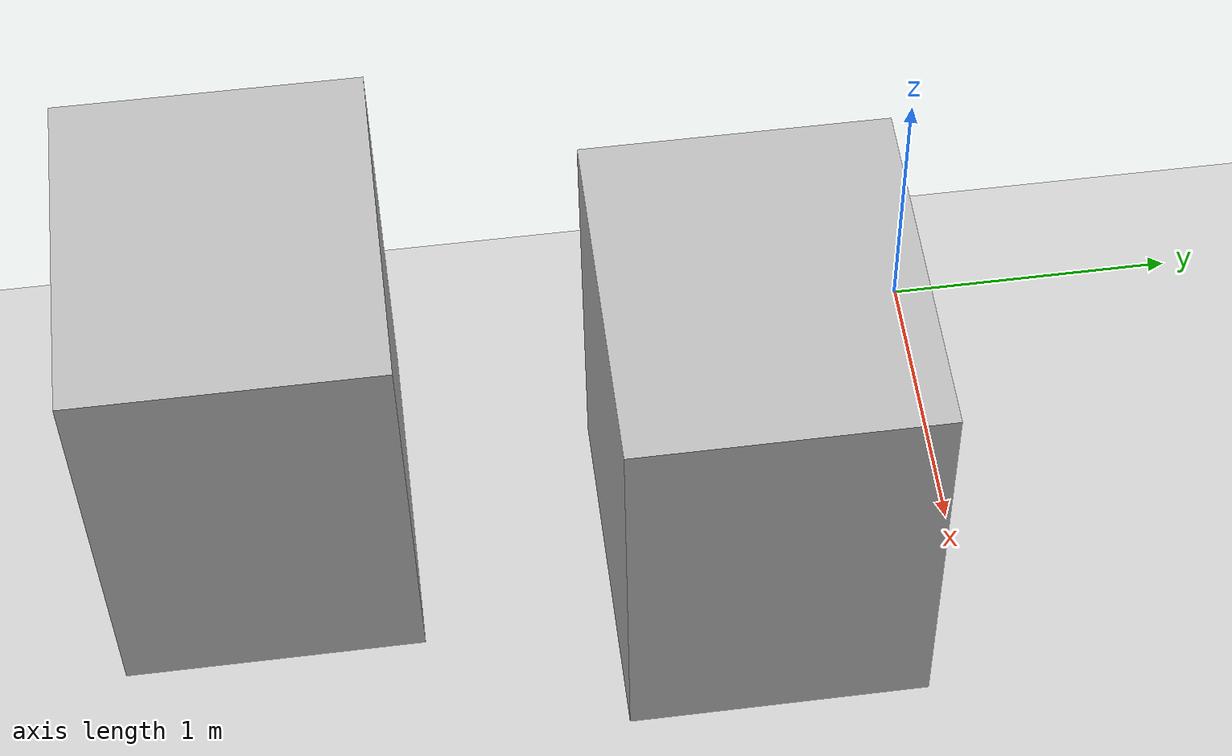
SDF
<sdf version="1.6">
 <world name="default">
  <light name="sun" type="directional">
   <pose>0 0 10 0 -0 0</pose>
   <diffuse>0.8 0.8 0.8 1</diffuse>
   <specular>0.2 0.2 0.2 1</specular>
   <attenuation>
    <range>1000</range>
    <constant>0.9</constant>
    <linear>0.01</linear>
    <quadratic>0.001</quadratic>
   </attenuation>
   <direction>-0.5 0.1 -0.9</direction>
  </light>
  <model name="ground_plane">
   <static>1</static>
   <link name="link">
    <collision name="collision">
     <geometry><plane><normal>0 0 1</normal><size>100 100</size></plane></geometry>
     <surface><friction><ode><mu>100</mu><mu2>50</mu2></ode></friction></surface>
    </collision>
    <visual name="visual">
     <cast_shadows>0</cast_shadows>
     <geometry><plane><normal>0 0 1</normal><size>100 100</size></plane></geometry>
     <material>
      <script><uri>file://media/materials/scripts/gazebo.material</uri><name>Gazebo/Grey</name></script>
     </material>
    </visual>
   </link>
  </model>
  <gravity>0 0 -9.8</gravity>
  <magnetic_field>6e-06 2.3e-05 -4.2e-05</magnetic_field>
  <atmosphere type="adiabatic"/>
  <physics name="default_physics" default="0" type="ode">
   <max_step_size>0.001</max_step_size>
   <real_time_factor>1</real_time_factor>
   <real_time_update_rate>1000</real_time_update_rate>
  </physics>
  <scene><ambient>0.4 0.4 0.4 1</ambient><background>0.7 0.7 0.7 1</background><shadows>1</shadows></scene>
  <spherical_coordinates>
   <surface_model>EARTH_WGS84</surface_model>
   <latitude_deg>0</latitude_deg>
   <longitude_deg>0</longitude_deg>
   <elevation>0</elevation>
   <heading_deg>0</heading_deg>
  </spherical_coordinates>
  <model name="Big box">
   <pose>0.669984 -2.3261 0.749855 0 -0.000235 0</pose>
   <plugin name="Magnetic_force_plugin" filename="libiarc_simulation_tools_dipole_moment.so">
    <bodyName>link</bodyName>
    <dipole_moment>200 0 0</dipole_moment>
    <shouldPublish>false</shouldPublish>
    <topicNs>communications_module/magnetic_force_0</topicNs>
    <updateRate>100</updateRate>
   </plugin>
   <static>0</static>
   <link name="link">
    <inertial>
     <mass>40</mass>
     <inertia><ixx>1</ixx><ixy>0</ixy><ixz>0</ixz><iyy>1</iyy><iyz>0</iyz><izz>1</izz></inertia>
    </inertial>
    <collision name="collision">
     <geometry><box><size>1.2 0.8 1.5</size></box></geometry>
     <surface><contact><ode><max_vel>0.1</max_vel><min_depth>0.001</min_depth></ode></contact></surface>
    </collision>
    <visual name="visual"><geometry><mesh><uri>model://big_box/meshes/big_box.dae</uri></mesh></geometry></visual>
   </link>
  </model>
  <model name="Big box_0">
   <pose>1.066 -0.683219 0.749926 0 -0.000118 0</pose>
   <plugin name="Magnetic_force_plugin" filename="libiarc_simulation_tools_dipole_moment.so">
    <bodyName>link</bodyName>
    <dipole_moment>5000000000 10000 2000000</dipole_moment>
    <shouldPublish>false</shouldPublish>
    <topicNs>communications_module/magnetic_force</topicNs>
    <updateRate>100</updateRate>
   </plugin>
   <static>0</static>
   <link name="link">
    <inertial>
     <mass>40</mass>
     <inertia><ixx>1</ixx><ixy>0</ixy><ixz>0</ixz><iyy>1</iyy><iyz>0</iyz><izz>1</izz></inertia>
    </inertial>
    <collision name="collision">
     <geometry><box><size>1.2 0.8 1.5</size></box></geometry>
     <surface><contact><ode><max_vel>0.1</max_vel><min_depth>0.001</min_depth></ode></contact></surface>
    </collision>
    <visual name="visual"><geometry><mesh><uri>model://big_box/meshes/big_box.dae</uri></mesh></geometry></visual>
   </link>
  </model>
 </world>
</sdf>
